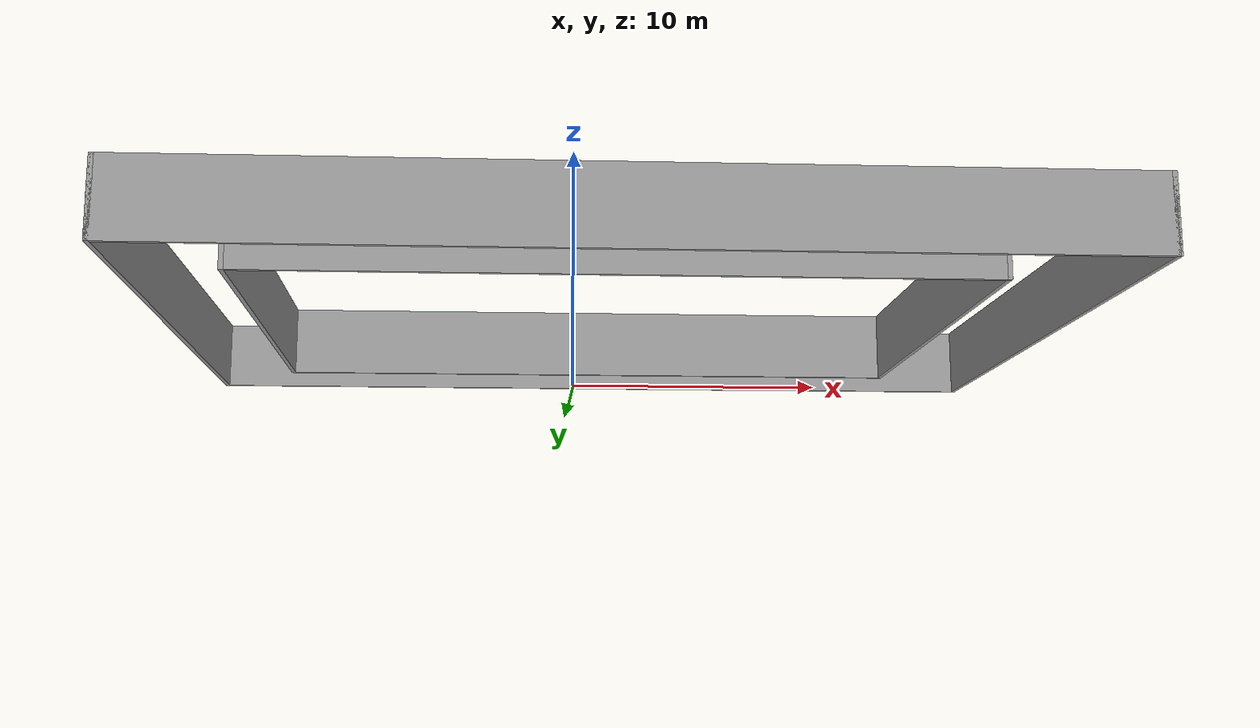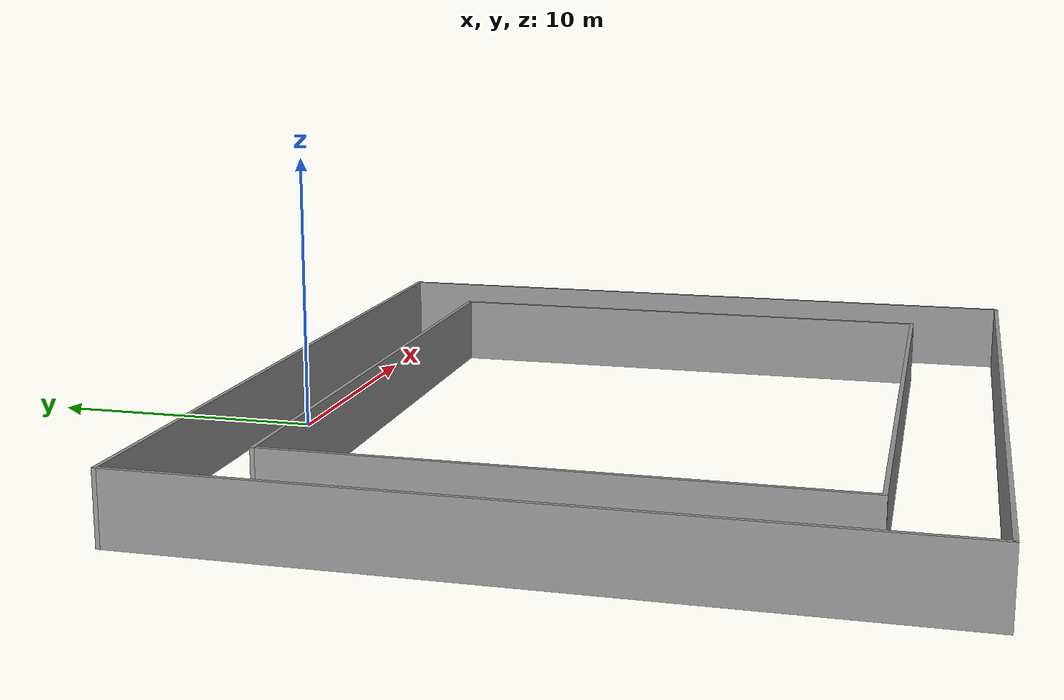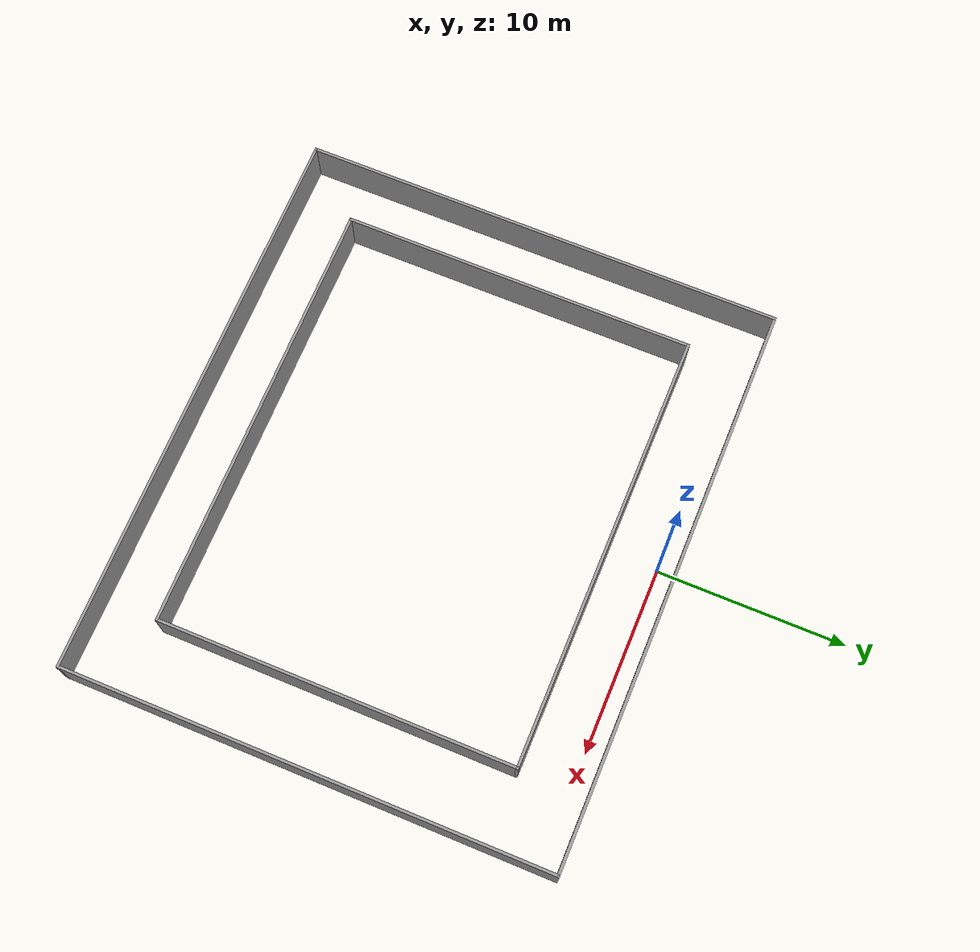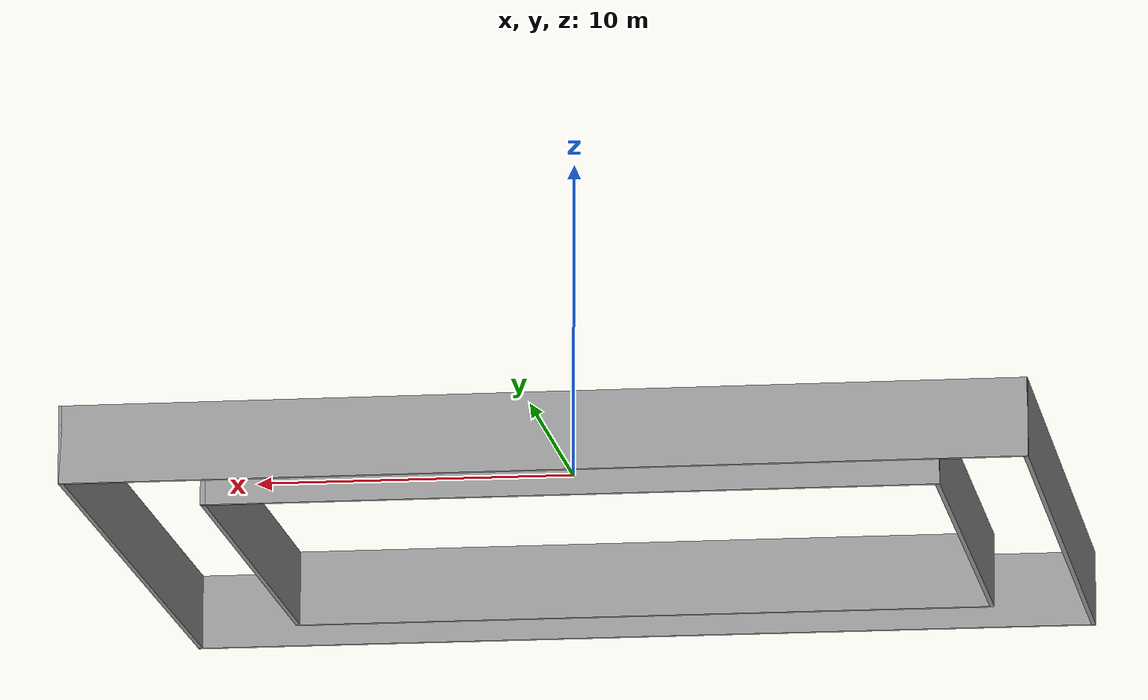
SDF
<?xml version='1.0'?>
<sdf version='1.6'>
  <model name='circle'>
    <pose frame=''>0.949276 -12.0325 0 0 -0 0</pose>
    <link name='Wall_0'>
      <collision name='Wall_0_Collision'>
        <geometry>
          <box>
            <size>30.5 0.15 2.5</size>
          </box>
        </geometry>
        <pose frame=''>0 0 1.25 0 -0 0</pose>
      </collision>
      <visual name='Wall_0_Visual'>
        <pose frame=''>0 0 1.25 0 -0 0</pose>
        <geometry>
          <box>
            <size>30.5 0.15 2.5</size>
          </box>
        </geometry>
        <material>
          <script>
            <uri>file://media/materials/scripts/gazebo.material</uri>
            <name>Gazebo/Grey</name>
          </script>
          <ambient>1 1 1 1</ambient>
        </material>
        <meta>
          <layer>0</layer>
        </meta>
      </visual>
      <pose frame=''>0 12.925 0 0 -0 0</pose>
    </link>
    <link name='Wall_10'>
      <collision name='Wall_10_Collision'>
        <geometry>
          <box>
            <size>23.5 0.15 2.5</size>
          </box>
        </geometry>
        <pose frame=''>0 0 1.25 0 -0 0</pose>
      </collision>
      <visual name='Wall_10_Visual'>
        <pose frame=''>0 0 1.25 0 -0 0</pose>
        <geometry>
          <box>
            <size>23.5 0.15 2.5</size>
          </box>
        </geometry>
        <material>
          <script>
            <uri>file://media/materials/scripts/gazebo.material</uri>
            <name>Gazebo/Grey</name>
          </script>
          <ambient>1 1 1 1</ambient>
        </material>
        <meta>
          <layer>0</layer>
        </meta>
      </visual>
      <pose frame=''>-0.397488 9.3186 0 0 -0 3.14159</pose>
    </link>
    <link name='Wall_2'>
      <collision name='Wall_2_Collision'>
        <geometry>
          <box>
            <size>26 0.15 2.5</size>
          </box>
        </geometry>
        <pose frame=''>0 0 1.25 0 -0 0</pose>
      </collision>
      <visual name='Wall_2_Visual'>
        <pose frame=''>0 0 1.25 0 -0 0</pose>
        <geometry>
          <box>
            <size>26 0.15 2.5</size>
          </box>
        </geometry>
        <material>
          <script>
            <uri>file://media/materials/scripts/gazebo.material</uri>
            <name>Gazebo/Grey</name>
          </script>
          <ambient>1 1 1 1</ambient>
        </material>
        <meta>
          <layer>0</layer>
        </meta>
      </visual>
      <pose frame=''>15.175 0 0 0 -0 -1.5708</pose>
    </link>
    <link name='Wall_4'>
      <collision name='Wall_4_Collision'>
        <geometry>
          <box>
            <size>26 0.15 2.5</size>
          </box>
        </geometry>
        <pose frame=''>0 0 1.25 0 -0 0</pose>
      </collision>
      <visual name='Wall_4_Visual'>
        <pose frame=''>0 0 1.25 0 -0 0</pose>
        <geometry>
          <box>
            <size>26 0.15 2.5</size>
          </box>
        </geometry>
        <material>
          <script>
            <uri>file://media/materials/scripts/gazebo.material</uri>
            <name>Gazebo/Grey</name>
          </script>
          <ambient>1 1 1 1</ambient>
        </material>
        <meta>
          <layer>0</layer>
        </meta>
      </visual>
      <pose frame=''>-15.175 0 0 0 -0 -1.5708</pose>
    </link>
    <link name='Wall_5'>
      <collision name='Wall_5_Collision'>
        <geometry>
          <box>
            <size>30.5 0.15 2.5</size>
          </box>
        </geometry>
        <pose frame=''>0 0 1.25 0 -0 0</pose>
      </collision>
      <visual name='Wall_5_Visual'>
        <pose frame=''>0 0 1.25 0 -0 0</pose>
        <geometry>
          <box>
            <size>30.5 0.15 2.5</size>
          </box>
        </geometry>
        <material>
          <script>
            <uri>file://media/materials/scripts/gazebo.material</uri>
            <name>Gazebo/Grey</name>
          </script>
          <ambient>1 1 1 1</ambient>
        </material>
        <meta>
          <layer>0</layer>
        </meta>
      </visual>
      <pose frame=''>0 -12.925 0 0 -0 0</pose>
    </link>
    <link name='Wall_7'>
      <collision name='Wall_7_Collision'>
        <geometry>
          <box>
            <size>19 0.15 2.5</size>
          </box>
        </geometry>
        <pose frame=''>0 0 1.25 0 -0 0</pose>
      </collision>
      <visual name='Wall_7_Visual'>
        <pose frame=''>0 0 1.25 0 -0 0</pose>
        <geometry>
          <box>
            <size>19 0.15 2.5</size>
          </box>
        </geometry>
        <material>
          <script>
            <uri>file://media/materials/scripts/gazebo.material</uri>
            <name>Gazebo/Grey</name>
          </script>
          <ambient>1 1 1 1</ambient>
        </material>
        <meta>
          <layer>0</layer>
        </meta>
      </visual>
      <pose frame=''>-12.0725 -0.106404 0 0 -0 -1.5708</pose>
    </link>
    <link name='Wall_8'>
      <collision name='Wall_8_Collision'>
        <geometry>
          <box>
            <size>23.5 0.15 2.5</size>
          </box>
        </geometry>
        <pose frame=''>0 0 1.25 0 -0 0</pose>
      </collision>
      <visual name='Wall_8_Visual'>
        <pose frame=''>0 0 1.25 0 -0 0</pose>
        <geometry>
          <box>
            <size>23.5 0.15 2.5</size>
          </box>
        </geometry>
        <material>
          <script>
            <uri>file://media/materials/scripts/gazebo.material</uri>
            <name>Gazebo/Grey</name>
          </script>
          <ambient>1 1 1 1</ambient>
        </material>
        <meta>
          <layer>0</layer>
        </meta>
      </visual>
      <pose frame=''>-0.397488 -9.5314 0 0 -0 0</pose>
    </link>
    <link name='Wall_9'>
      <collision name='Wall_9_Collision'>
        <geometry>
          <box>
            <size>19 0.15 2.5</size>
          </box>
        </geometry>
        <pose frame=''>0 0 1.25 0 -0 0</pose>
      </collision>
      <visual name='Wall_9_Visual'>
        <pose frame=''>0 0 1.25 0 -0 0</pose>
        <geometry>
          <box>
            <size>19 0.15 2.5</size>
          </box>
        </geometry>
        <material>
          <script>
            <uri>file://media/materials/scripts/gazebo.material</uri>
            <name>Gazebo/Grey</name>
          </script>
          <ambient>1 1 1 1</ambient>
        </material>
        <meta>
          <layer>0</layer>
        </meta>
      </visual>
      <pose frame=''>11.2775 -0.106404 0 0 -0 1.5708</pose>
    </link>
    <static>1</static>
  </model>
</sdf>
